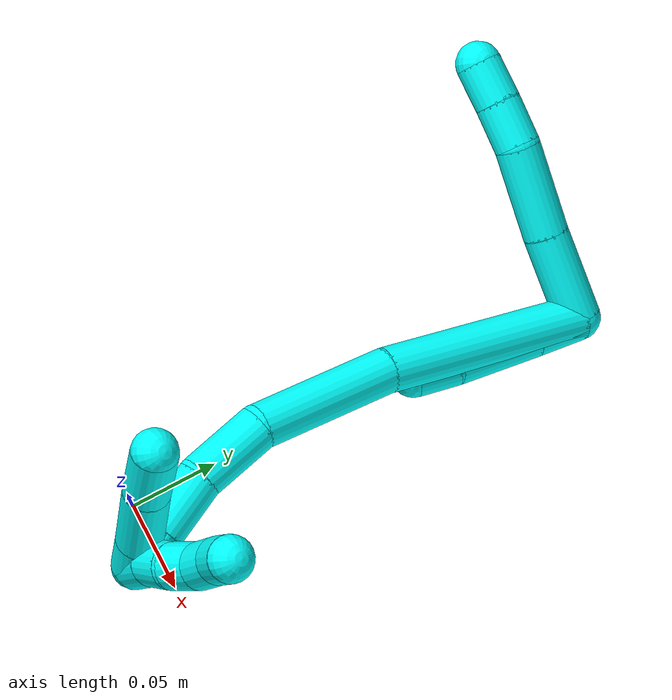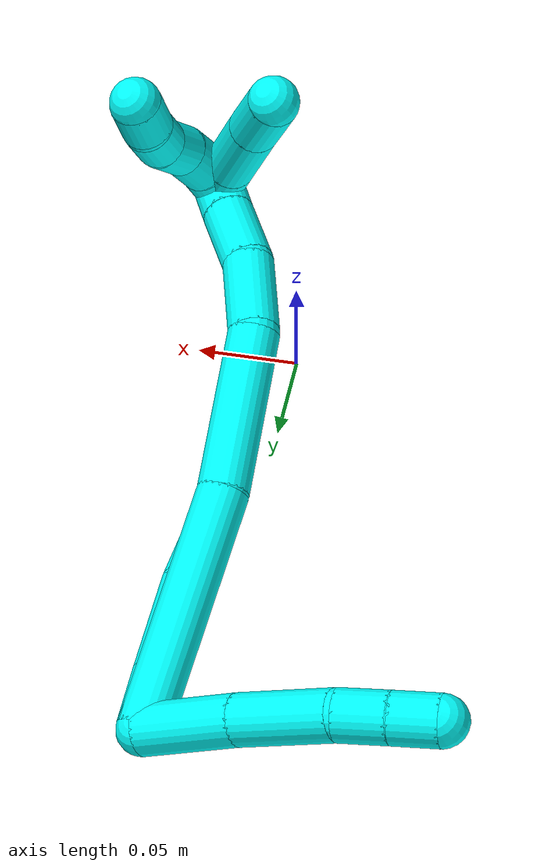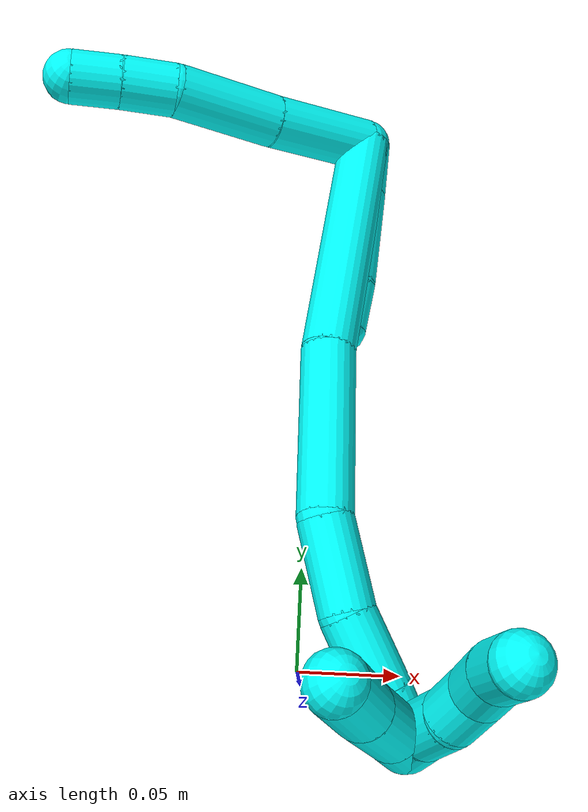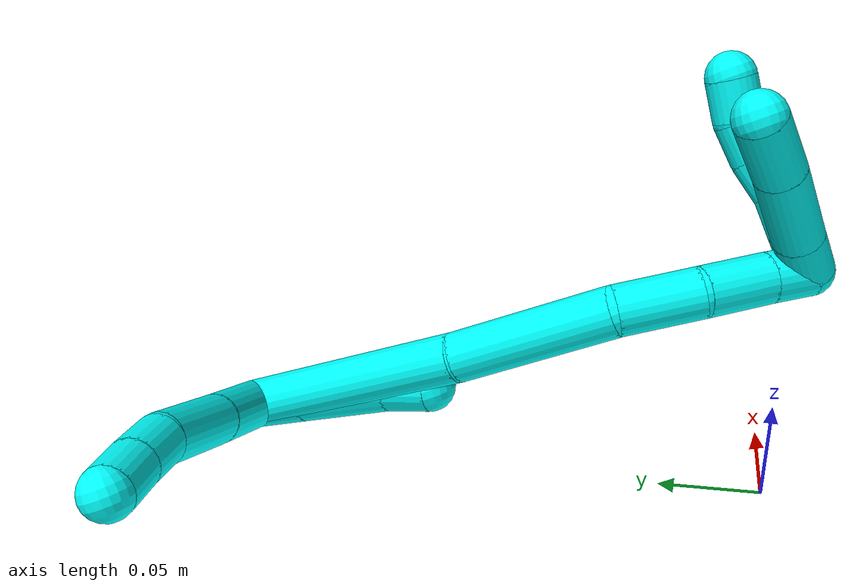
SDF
<sdf version="1.7">
 <world name="default">
  <model name="3">
   <static>0</static>
   <link name="3">
    <collision name="collision-cylinder-e_1_2_8">
     <pose>-0.024982 -0.001357 0.002448 0.506124 -1.45923 -0.454513</pose>
     <geometry><cylinder><radius>0.0125</radius><length>0.050277</length></cylinder></geometry>
     <surface>
      <friction><ode><mu>1.16</mu><mu2>1.16</mu2><slip1>0</slip1><slip2>0</slip2></ode></friction>
      <contact><ode><kp>1e+06</kp><kd>1</kd><max_vel>0</max_vel><min_depth>0.001</min_depth></ode></contact>
     </surface>
    </collision>
    <visual name="visual-cylinder-e_1_2_8">
     <pose>-0.024982 -0.001357 0.002448 0.506124 -1.45923 -0.454513</pose>
     <geometry><cylinder><radius>0.0125</radius><length>0.050277</length></cylinder></geometry>
     <material><ambient>0.003922 1 0.996078 1</ambient></material>
    </visual>
    <collision name="collision-cylinder-e_2_8_9">
     <pose>-0.075294 -0.002728 0.007645 0.005089 -1.46271 -0.004567</pose>
     <geometry><cylinder><radius>0.0125</radius><length>0.050957</length></cylinder></geometry>
     <surface>
      <friction><ode><mu>1.16</mu><mu2>1.16</mu2><slip1>0</slip1><slip2>0</slip2></ode></friction>
      <contact><ode><kp>1e+06</kp><kd>1</kd><max_vel>0</max_vel><min_depth>0.001</min_depth></ode></contact>
     </surface>
    </collision>
    <visual name="visual-cylinder-e_2_8_9">
     <pose>-0.075294 -0.002728 0.007645 0.005089 -1.46271 -0.004567</pose>
     <geometry><cylinder><radius>0.0125</radius><length>0.050957</length></cylinder></geometry>
     <material><ambient>0.003922 1 0.996078 1</ambient></material>
    </visual>
    <collision name="collision-cylinder-e_3_9_10">
     <pose>-0.113175 -0.002554 0.008717 -3.03 -1.43723 3.01404</pose>
     <geometry><cylinder><radius>0.0125</radius><length>0.025328</length></cylinder></geometry>
     <surface>
      <friction><ode><mu>1.16</mu><mu2>1.16</mu2><slip1>0</slip1><slip2>0</slip2></ode></friction>
      <contact><ode><kp>1e+06</kp><kd>1</kd><max_vel>0</max_vel><min_depth>0.001</min_depth></ode></contact>
     </surface>
    </collision>
    <visual name="visual-cylinder-e_3_9_10">
     <pose>-0.113175 -0.002554 0.008717 -3.03 -1.43723 3.01404</pose>
     <geometry><cylinder><radius>0.0125</radius><length>0.025328</length></cylinder></geometry>
     <material><ambient>0.003922 1 0.996078 1</ambient></material>
    </visual>
    <collision name="collision-cylinder-e_4_10_6">
     <pose>-0.137252 -0.002294 0.004922 -3.10768 -1.38885 3.10087</pose>
     <geometry><cylinder><radius>0.0125</radius><length>0.023438</length></cylinder></geometry>
     <surface>
      <friction><ode><mu>1.16</mu><mu2>1.16</mu2><slip1>0</slip1><slip2>0</slip2></ode></friction>
      <contact><ode><kp>1e+06</kp><kd>1</kd><max_vel>0</max_vel><min_depth>0.001</min_depth></ode></contact>
     </surface>
    </collision>
    <visual name="visual-cylinder-e_4_10_6">
     <pose>-0.137252 -0.002294 0.004922 -3.10768 -1.38885 3.10087</pose>
     <geometry><cylinder><radius>0.0125</radius><length>0.023438</length></cylinder></geometry>
     <material><ambient>0.003922 1 0.996078 1</ambient></material>
    </visual>
    <collision name="collision-cylinder-e_1_2_11">
     <pose>-0.001075 -0.013984 -0.002144 1.72295 -0.075829 -0.088328</pose>
     <geometry><cylinder><radius>0.0125</radius><length>0.028377</length></cylinder></geometry>
     <surface>
      <friction><ode><mu>1.16</mu><mu2>1.16</mu2><slip1>0</slip1><slip2>0</slip2></ode></friction>
      <contact><ode><kp>1e+06</kp><kd>1</kd><max_vel>0</max_vel><min_depth>0.001</min_depth></ode></contact>
     </surface>
    </collision>
    <visual name="visual-cylinder-e_1_2_11">
     <pose>-0.001075 -0.013984 -0.002144 1.72295 -0.075829 -0.088328</pose>
     <geometry><cylinder><radius>0.0125</radius><length>0.028377</length></cylinder></geometry>
     <material><ambient>0.003922 1 0.996078 1</ambient></material>
    </visual>
    <collision name="collision-cylinder-e_2_11_12">
     <pose>-0.004395 -0.05165 -0.007922 1.72303 -0.093452 -0.108854</pose>
     <geometry><cylinder><radius>0.0125</radius><length>0.048129</length></cylinder></geometry>
     <surface>
      <friction><ode><mu>1.16</mu><mu2>1.16</mu2><slip1>0</slip1><slip2>0</slip2></ode></friction>
      <contact><ode><kp>1e+06</kp><kd>1</kd><max_vel>0</max_vel><min_depth>0.001</min_depth></ode></contact>
     </surface>
    </collision>
    <visual name="visual-cylinder-e_2_11_12">
     <pose>-0.004395 -0.05165 -0.007922 1.72303 -0.093452 -0.108854</pose>
     <geometry><cylinder><radius>0.0125</radius><length>0.048129</length></cylinder></geometry>
     <material><ambient>0.003922 1 0.996078 1</ambient></material>
    </visual>
    <collision name="collision-cylinder-e_3_12_5">
     <pose>-0.008244 -0.086565 -0.0146 1.8355 -0.136886 -0.178734</pose>
     <geometry><cylinder><radius>0.0125</radius><length>0.023495</length></cylinder></geometry>
     <surface>
      <friction><ode><mu>1.16</mu><mu2>1.16</mu2><slip1>0</slip1><slip2>0</slip2></ode></friction>
      <contact><ode><kp>1e+06</kp><kd>1</kd><max_vel>0</max_vel><min_depth>0.001</min_depth></ode></contact>
     </surface>
    </collision>
    <visual name="visual-cylinder-e_3_12_5">
     <pose>-0.008244 -0.086565 -0.0146 1.8355 -0.136886 -0.178734</pose>
     <geometry><cylinder><radius>0.0125</radius><length>0.023495</length></cylinder></geometry>
     <material><ambient>0.003922 1 0.996078 1</ambient></material>
    </visual>
    <collision name="collision-cylinder-e_1_2_13">
     <pose>-0.010445 -0.059325 -0.003057 1.62228 -0.174054 -0.183204</pose>
     <geometry><cylinder><radius>0.0125</radius><length>0.12063</length></cylinder></geometry>
     <surface>
      <friction><ode><mu>1.16</mu><mu2>1.16</mu2><slip1>0</slip1><slip2>0</slip2></ode></friction>
      <contact><ode><kp>1e+06</kp><kd>1</kd><max_vel>0</max_vel><min_depth>0.001</min_depth></ode></contact>
     </surface>
    </collision>
    <visual name="visual-cylinder-e_1_2_13">
     <pose>-0.010445 -0.059325 -0.003057 1.62228 -0.174054 -0.183204</pose>
     <geometry><cylinder><radius>0.0125</radius><length>0.12063</length></cylinder></geometry>
     <material><ambient>0.003922 1 0.996078 1</ambient></material>
    </visual>
    <collision name="collision-cylinder-e_2_13_14">
     <pose>-0.022743 -0.15939 -0.006873 1.58943 -0.04545 -0.046305</pose>
     <geometry><cylinder><radius>0.0125</radius><length>0.081579</length></cylinder></geometry>
     <surface>
      <friction><ode><mu>1.16</mu><mu2>1.16</mu2><slip1>0</slip1><slip2>0</slip2></ode></friction>
      <contact><ode><kp>1e+06</kp><kd>1</kd><max_vel>0</max_vel><min_depth>0.001</min_depth></ode></contact>
     </surface>
    </collision>
    <visual name="visual-cylinder-e_2_13_14">
     <pose>-0.022743 -0.15939 -0.006873 1.58943 -0.04545 -0.046305</pose>
     <geometry><cylinder><radius>0.0125</radius><length>0.081579</length></cylinder></geometry>
     <material><ambient>0.003922 1 0.996078 1</ambient></material>
    </visual>
    <collision name="collision-cylinder-e_3_14_15">
     <pose>-0.019126 -0.219806 -0.010425 1.71179 0.268638 0.308855</pose>
     <geometry><cylinder><radius>0.0125</radius><length>0.041225</length></cylinder></geometry>
     <surface>
      <friction><ode><mu>1.16</mu><mu2>1.16</mu2><slip1>0</slip1><slip2>0</slip2></ode></friction>
      <contact><ode><kp>1e+06</kp><kd>1</kd><max_vel>0</max_vel><min_depth>0.001</min_depth></ode></contact>
     </surface>
    </collision>
    <visual name="visual-cylinder-e_3_14_15">
     <pose>-0.019126 -0.219806 -0.010425 1.71179 0.268638 0.308855</pose>
     <geometry><cylinder><radius>0.0125</radius><length>0.041225</length></cylinder></geometry>
     <material><ambient>0.003922 1 0.996078 1</ambient></material>
    </visual>
    <collision name="collision-cylinder-e_4_15_16">
     <pose>-0.005149 -0.254272 -0.015946 1.75322 0.514731 0.612502</pose>
     <geometry><cylinder><radius>0.0125</radius><length>0.034556</length></cylinder></geometry>
     <surface>
      <friction><ode><mu>1.16</mu><mu2>1.16</mu2><slip1>0</slip1><slip2>0</slip2></ode></friction>
      <contact><ode><kp>1e+06</kp><kd>1</kd><max_vel>0</max_vel><min_depth>0.001</min_depth></ode></contact>
     </surface>
    </collision>
    <visual name="visual-cylinder-e_4_15_16">
     <pose>-0.005149 -0.254272 -0.015946 1.75322 0.514731 0.612502</pose>
     <geometry><cylinder><radius>0.0125</radius><length>0.034556</length></cylinder></geometry>
     <material><ambient>0.003922 1 0.996078 1</ambient></material>
    </visual>
    <collision name="collision-cylinder-e_5_16_1">
     <pose>0.008538 -0.27857 -0.020643 1.77497 0.490143 0.596079</pose>
     <geometry><cylinder><radius>0.0125</radius><length>0.02201</length></cylinder></geometry>
     <surface>
      <friction><ode><mu>1.16</mu><mu2>1.16</mu2><slip1>0</slip1><slip2>0</slip2></ode></friction>
      <contact><ode><kp>1e+06</kp><kd>1</kd><max_vel>0</max_vel><min_depth>0.001</min_depth></ode></contact>
     </surface>
    </collision>
    <visual name="visual-cylinder-e_5_16_1">
     <pose>0.008538 -0.27857 -0.020643 1.77497 0.490143 0.596079</pose>
     <geometry><cylinder><radius>0.0125</radius><length>0.02201</length></cylinder></geometry>
     <material><ambient>0.003922 1 0.996078 1</ambient></material>
    </visual>
    <collision name="collision-cylinder-e_1_1_17">
     <pose>0.012929 -0.287752 -0.012648 -0.032616 -0.078982 0.001289</pose>
     <geometry><cylinder><radius>0.0125</radius><length>0.02</length></cylinder></geometry>
     <surface>
      <friction><ode><mu>1.16</mu><mu2>1.16</mu2><slip1>0</slip1><slip2>0</slip2></ode></friction>
      <contact><ode><kp>1e+06</kp><kd>1</kd><max_vel>0</max_vel><min_depth>0.001</min_depth></ode></contact>
     </surface>
    </collision>
    <visual name="visual-cylinder-e_1_1_17">
     <pose>0.012929 -0.287752 -0.012648 -0.032616 -0.078982 0.001289</pose>
     <geometry><cylinder><radius>0.0125</radius><length>0.02</length></cylinder></geometry>
     <material><ambient>0.003922 1 0.996078 1</ambient></material>
    </visual>
    <collision name="collision-cylinder-e_2_17_18">
     <pose>0.013137 -0.287105 0.00726 -0.032406 0.099787 -0.001618</pose>
     <geometry><cylinder><radius>0.0125</radius><length>0.02</length></cylinder></geometry>
     <surface>
      <friction><ode><mu>1.16</mu><mu2>1.16</mu2><slip1>0</slip1><slip2>0</slip2></ode></friction>
      <contact><ode><kp>1e+06</kp><kd>1</kd><max_vel>0</max_vel><min_depth>0.001</min_depth></ode></contact>
     </surface>
    </collision>
    <visual name="visual-cylinder-e_2_17_18">
     <pose>0.013137 -0.287105 0.00726 -0.032406 0.099787 -0.001618</pose>
     <geometry><cylinder><radius>0.0125</radius><length>0.02</length></cylinder></geometry>
     <material><ambient>0.003922 1 0.996078 1</ambient></material>
    </visual>
    <collision name="collision-cylinder-e_3_18_19">
     <pose>0.015265 -0.284216 0.026804 -0.261236 0.11345 -0.014919</pose>
     <geometry><cylinder><radius>0.0125</radius><length>0.02</length></cylinder></geometry>
     <surface>
      <friction><ode><mu>1.16</mu><mu2>1.16</mu2><slip1>0</slip1><slip2>0</slip2></ode></friction>
      <contact><ode><kp>1e+06</kp><kd>1</kd><max_vel>0</max_vel><min_depth>0.001</min_depth></ode></contact>
     </surface>
    </collision>
    <visual name="visual-cylinder-e_3_18_19">
     <pose>0.015265 -0.284216 0.026804 -0.261236 0.11345 -0.014919</pose>
     <geometry><cylinder><radius>0.0125</radius><length>0.02</length></cylinder></geometry>
     <material><ambient>0.003922 1 0.996078 1</ambient></material>
    </visual>
    <collision name="collision-cylinder-e_4_19_20">
     <pose>0.01513 -0.280809 0.046286 -0.084892 -0.127011 0.005402</pose>
     <geometry><cylinder><radius>0.0125</radius><length>0.02</length></cylinder></geometry>
     <surface>
      <friction><ode><mu>1.16</mu><mu2>1.16</mu2><slip1>0</slip1><slip2>0</slip2></ode></friction>
      <contact><ode><kp>1e+06</kp><kd>1</kd><max_vel>0</max_vel><min_depth>0.001</min_depth></ode></contact>
     </surface>
    </collision>
    <visual name="visual-cylinder-e_4_19_20">
     <pose>0.01513 -0.280809 0.046286 -0.084892 -0.127011 0.005402</pose>
     <geometry><cylinder><radius>0.0125</radius><length>0.02</length></cylinder></geometry>
     <material><ambient>0.003922 1 0.996078 1</ambient></material>
    </visual>
    <collision name="collision-cylinder-e_5_20_4">
     <pose>0.012678 -0.281384 0.065998 0.143082 -0.118832 -0.008526</pose>
     <geometry><cylinder><radius>0.0125</radius><length>0.02</length></cylinder></geometry>
     <surface>
      <friction><ode><mu>1.16</mu><mu2>1.16</mu2><slip1>0</slip1><slip2>0</slip2></ode></friction>
      <contact><ode><kp>1e+06</kp><kd>1</kd><max_vel>0</max_vel><min_depth>0.001</min_depth></ode></contact>
     </surface>
    </collision>
    <visual name="visual-cylinder-e_5_20_4">
     <pose>0.012678 -0.281384 0.065998 0.143082 -0.118832 -0.008526</pose>
     <geometry><cylinder><radius>0.0125</radius><length>0.02</length></cylinder></geometry>
     <material><ambient>0.003922 1 0.996078 1</ambient></material>
    </visual>
    <collision name="collision-cylinder-e_1_1_21">
     <pose>0.006277 -0.288276 -0.013323 0.021372 -0.675333 -0.007504</pose>
     <geometry><cylinder><radius>0.0125</radius><length>0.023808</length></cylinder></geometry>
     <surface>
      <friction><ode><mu>1.16</mu><mu2>1.16</mu2><slip1>0</slip1><slip2>0</slip2></ode></friction>
      <contact><ode><kp>1e+06</kp><kd>1</kd><max_vel>0</max_vel><min_depth>0.001</min_depth></ode></contact>
     </surface>
    </collision>
    <visual name="visual-cylinder-e_1_1_21">
     <pose>0.006277 -0.288276 -0.013323 0.021372 -0.675333 -0.007504</pose>
     <geometry><cylinder><radius>0.0125</radius><length>0.023808</length></cylinder></geometry>
     <material><ambient>0.003922 1 0.996078 1</ambient></material>
    </visual>
    <collision name="collision-cylinder-e_2_21_22">
     <pose>-0.014786 -0.289156 0.012575 0.04101 -0.686471 -0.014658</pose>
     <geometry><cylinder><radius>0.0125</radius><length>0.042982</length></cylinder></geometry>
     <surface>
      <friction><ode><mu>1.16</mu><mu2>1.16</mu2><slip1>0</slip1><slip2>0</slip2></ode></friction>
      <contact><ode><kp>1e+06</kp><kd>1</kd><max_vel>0</max_vel><min_depth>0.001</min_depth></ode></contact>
     </surface>
    </collision>
    <visual name="visual-cylinder-e_2_21_22">
     <pose>-0.014786 -0.289156 0.012575 0.04101 -0.686471 -0.014658</pose>
     <geometry><cylinder><radius>0.0125</radius><length>0.042982</length></cylinder></geometry>
     <material><ambient>0.003922 1 0.996078 1</ambient></material>
    </visual>
    <collision name="collision-cylinder-e_3_22_3">
     <pose>-0.03892 -0.289579 0.042035 -0.020062 -0.685555 0.00716</pose>
     <geometry><cylinder><radius>0.0125</radius><length>0.03321</length></cylinder></geometry>
     <surface>
      <friction><ode><mu>1.16</mu><mu2>1.16</mu2><slip1>0</slip1><slip2>0</slip2></ode></friction>
      <contact><ode><kp>1e+06</kp><kd>1</kd><max_vel>0</max_vel><min_depth>0.001</min_depth></ode></contact>
     </surface>
    </collision>
    <visual name="visual-cylinder-e_3_22_3">
     <pose>-0.03892 -0.289579 0.042035 -0.020062 -0.685555 0.00716</pose>
     <geometry><cylinder><radius>0.0125</radius><length>0.03321</length></cylinder></geometry>
     <material><ambient>0.003922 1 0.996078 1</ambient></material>
    </visual>
    <collision name="collision-sphere-3">
     <pose>-0.049433 -0.289322 0.054886 0 -0 0</pose>
     <geometry><sphere><radius>0.0125</radius></sphere></geometry>
     <surface>
      <friction><ode><mu>1.16</mu><mu2>1.16</mu2><slip1>0</slip1><slip2>0</slip2></ode></friction>
      <contact><ode><kp>1e+06</kp><kd>1</kd><max_vel>0</max_vel><min_depth>0.001</min_depth></ode></contact>
     </surface>
    </collision>
    <visual name="visual-sphere-3">
     <pose>-0.049433 -0.289322 0.054886 0 -0 0</pose>
     <geometry><sphere><radius>0.0125</radius></sphere></geometry>
     <material><ambient>0.003922 1 0.996078 1</ambient></material>
    </visual>
    <collision name="collision-sphere-22">
     <pose>-0.028407 -0.289837 0.029184 0 -0 0</pose>
     <geometry><sphere><radius>0.0125</radius></sphere></geometry>
     <surface>
      <friction><ode><mu>1.16</mu><mu2>1.16</mu2><slip1>0</slip1><slip2>0</slip2></ode></friction>
      <contact><ode><kp>1e+06</kp><kd>1</kd><max_vel>0</max_vel><min_depth>0.001</min_depth></ode></contact>
     </surface>
    </collision>
    <visual name="visual-sphere-22">
     <pose>-0.028407 -0.289837 0.029184 0 -0 0</pose>
     <geometry><sphere><radius>0.0125</radius></sphere></geometry>
     <material><ambient>0.003922 1 0.996078 1</ambient></material>
    </visual>
    <collision name="collision-sphere-21">
     <pose>-0.001165 -0.288474 -0.004034 0 -0 0</pose>
     <geometry><sphere><radius>0.0125</radius></sphere></geometry>
     <surface>
      <friction><ode><mu>1.16</mu><mu2>1.16</mu2><slip1>0</slip1><slip2>0</slip2></ode></friction>
      <contact><ode><kp>1e+06</kp><kd>1</kd><max_vel>0</max_vel><min_depth>0.001</min_depth></ode></contact>
     </surface>
    </collision>
    <visual name="visual-sphere-21">
     <pose>-0.001165 -0.288474 -0.004034 0 -0 0</pose>
     <geometry><sphere><radius>0.0125</radius></sphere></geometry>
     <material><ambient>0.003922 1 0.996078 1</ambient></material>
    </visual>
    <collision name="collision-sphere-4">
     <pose>0.011493 -0.2828 0.075826 0 -0 0</pose>
     <geometry><sphere><radius>0.0125</radius></sphere></geometry>
     <surface>
      <friction><ode><mu>1.16</mu><mu2>1.16</mu2><slip1>0</slip1><slip2>0</slip2></ode></friction>
      <contact><ode><kp>1e+06</kp><kd>1</kd><max_vel>0</max_vel><min_depth>0.001</min_depth></ode></contact>
     </surface>
    </collision>
    <visual name="visual-sphere-4">
     <pose>0.011493 -0.2828 0.075826 0 -0 0</pose>
     <geometry><sphere><radius>0.0125</radius></sphere></geometry>
     <material><ambient>0.003922 1 0.996078 1</ambient></material>
    </visual>
    <collision name="collision-sphere-20">
     <pose>0.013864 -0.279968 0.05617 0 -0 0</pose>
     <geometry><sphere><radius>0.0125</radius></sphere></geometry>
     <surface>
      <friction><ode><mu>1.16</mu><mu2>1.16</mu2><slip1>0</slip1><slip2>0</slip2></ode></friction>
      <contact><ode><kp>1e+06</kp><kd>1</kd><max_vel>0</max_vel><min_depth>0.001</min_depth></ode></contact>
     </surface>
    </collision>
    <visual name="visual-sphere-20">
     <pose>0.013864 -0.279968 0.05617 0 -0 0</pose>
     <geometry><sphere><radius>0.0125</radius></sphere></geometry>
     <material><ambient>0.003922 1 0.996078 1</ambient></material>
    </visual>
    <collision name="collision-sphere-11">
     <pose>-0.00215 -0.027968 -0.004289 0 -0 0</pose>
     <geometry><sphere><radius>0.0125</radius></sphere></geometry>
     <surface>
      <friction><ode><mu>1.16</mu><mu2>1.16</mu2><slip1>0</slip1><slip2>0</slip2></ode></friction>
      <contact><ode><kp>1e+06</kp><kd>1</kd><max_vel>0</max_vel><min_depth>0.001</min_depth></ode></contact>
     </surface>
    </collision>
    <visual name="visual-sphere-11">
     <pose>-0.00215 -0.027968 -0.004289 0 -0 0</pose>
     <geometry><sphere><radius>0.0125</radius></sphere></geometry>
     <material><ambient>0.003922 1 0.996078 1</ambient></material>
    </visual>
    <collision name="collision-sphere-6">
     <pose>-0.148778 -0.002222 0.002803 0 -0 0</pose>
     <geometry><sphere><radius>0.0125</radius></sphere></geometry>
     <surface>
      <friction><ode><mu>1.16</mu><mu2>1.16</mu2><slip1>0</slip1><slip2>0</slip2></ode></friction>
      <contact><ode><kp>1e+06</kp><kd>1</kd><max_vel>0</max_vel><min_depth>0.001</min_depth></ode></contact>
     </surface>
    </collision>
    <visual name="visual-sphere-6">
     <pose>-0.148778 -0.002222 0.002803 0 -0 0</pose>
     <geometry><sphere><radius>0.0125</radius></sphere></geometry>
     <material><ambient>0.003922 1 0.996078 1</ambient></material>
    </visual>
    <collision name="collision-sphere-10">
     <pose>-0.125726 -0.002366 0.007041 0 -0 0</pose>
     <geometry><sphere><radius>0.0125</radius></sphere></geometry>
     <surface>
      <friction><ode><mu>1.16</mu><mu2>1.16</mu2><slip1>0</slip1><slip2>0</slip2></ode></friction>
      <contact><ode><kp>1e+06</kp><kd>1</kd><max_vel>0</max_vel><min_depth>0.001</min_depth></ode></contact>
     </surface>
    </collision>
    <visual name="visual-sphere-10">
     <pose>-0.125726 -0.002366 0.007041 0 -0 0</pose>
     <geometry><sphere><radius>0.0125</radius></sphere></geometry>
     <material><ambient>0.003922 1 0.996078 1</ambient></material>
    </visual>
    <collision name="collision-sphere-9">
     <pose>-0.100624 -0.002742 0.010393 0 -0 0</pose>
     <geometry><sphere><radius>0.0125</radius></sphere></geometry>
     <surface>
      <friction><ode><mu>1.16</mu><mu2>1.16</mu2><slip1>0</slip1><slip2>0</slip2></ode></friction>
      <contact><ode><kp>1e+06</kp><kd>1</kd><max_vel>0</max_vel><min_depth>0.001</min_depth></ode></contact>
     </surface>
    </collision>
    <visual name="visual-sphere-9">
     <pose>-0.100624 -0.002742 0.010393 0 -0 0</pose>
     <geometry><sphere><radius>0.0125</radius></sphere></geometry>
     <material><ambient>0.003922 1 0.996078 1</ambient></material>
    </visual>
    <collision name="collision-sphere-2">
     <geometry><sphere><radius>0.0125</radius></sphere></geometry>
     <surface>
      <friction><ode><mu>1.16</mu><mu2>1.16</mu2><slip1>0</slip1><slip2>0</slip2></ode></friction>
      <contact><ode><kp>1e+06</kp><kd>1</kd><max_vel>0</max_vel><min_depth>0.001</min_depth></ode></contact>
     </surface>
    </collision>
    <visual name="visual-sphere-2">
     <geometry><sphere><radius>0.0125</radius></sphere></geometry>
     <material><ambient>0.003922 1 0.996078 1</ambient></material>
    </visual>
    <collision name="collision-sphere-19">
     <pose>0.016397 -0.28165 0.036402 0 -0 0</pose>
     <geometry><sphere><radius>0.0125</radius></sphere></geometry>
     <surface>
      <friction><ode><mu>1.16</mu><mu2>1.16</mu2><slip1>0</slip1><slip2>0</slip2></ode></friction>
      <contact><ode><kp>1e+06</kp><kd>1</kd><max_vel>0</max_vel><min_depth>0.001</min_depth></ode></contact>
     </surface>
    </collision>
    <visual name="visual-sphere-19">
     <pose>0.016397 -0.28165 0.036402 0 -0 0</pose>
     <geometry><sphere><radius>0.0125</radius></sphere></geometry>
     <material><ambient>0.003922 1 0.996078 1</ambient></material>
    </visual>
    <collision name="collision-sphere-8">
     <pose>-0.049965 -0.002714 0.004896 0 -0 0</pose>
     <geometry><sphere><radius>0.0125</radius></sphere></geometry>
     <surface>
      <friction><ode><mu>1.16</mu><mu2>1.16</mu2><slip1>0</slip1><slip2>0</slip2></ode></friction>
      <contact><ode><kp>1e+06</kp><kd>1</kd><max_vel>0</max_vel><min_depth>0.001</min_depth></ode></contact>
     </surface>
    </collision>
    <visual name="visual-sphere-8">
     <pose>-0.049965 -0.002714 0.004896 0 -0 0</pose>
     <geometry><sphere><radius>0.0125</radius></sphere></geometry>
     <material><ambient>0.003922 1 0.996078 1</ambient></material>
    </visual>
    <collision name="collision-sphere-12">
     <pose>-0.006641 -0.075333 -0.011555 0 -0 0</pose>
     <geometry><sphere><radius>0.0125</radius></sphere></geometry>
     <surface>
      <friction><ode><mu>1.16</mu><mu2>1.16</mu2><slip1>0</slip1><slip2>0</slip2></ode></friction>
      <contact><ode><kp>1e+06</kp><kd>1</kd><max_vel>0</max_vel><min_depth>0.001</min_depth></ode></contact>
     </surface>
    </collision>
    <visual name="visual-sphere-12">
     <pose>-0.006641 -0.075333 -0.011555 0 -0 0</pose>
     <geometry><sphere><radius>0.0125</radius></sphere></geometry>
     <material><ambient>0.003922 1 0.996078 1</ambient></material>
    </visual>
    <collision name="collision-sphere-5">
     <pose>-0.009847 -0.097797 -0.017645 0 -0 0</pose>
     <geometry><sphere><radius>0.0125</radius></sphere></geometry>
     <surface>
      <friction><ode><mu>1.16</mu><mu2>1.16</mu2><slip1>0</slip1><slip2>0</slip2></ode></friction>
      <contact><ode><kp>1e+06</kp><kd>1</kd><max_vel>0</max_vel><min_depth>0.001</min_depth></ode></contact>
     </surface>
    </collision>
    <visual name="visual-sphere-5">
     <pose>-0.009847 -0.097797 -0.017645 0 -0 0</pose>
     <geometry><sphere><radius>0.0125</radius></sphere></geometry>
     <material><ambient>0.003922 1 0.996078 1</ambient></material>
    </visual>
    <collision name="collision-sphere-13">
     <pose>-0.02089 -0.11865 -0.006114 0 -0 0</pose>
     <geometry><sphere><radius>0.0125</radius></sphere></geometry>
     <surface>
      <friction><ode><mu>1.16</mu><mu2>1.16</mu2><slip1>0</slip1><slip2>0</slip2></ode></friction>
      <contact><ode><kp>1e+06</kp><kd>1</kd><max_vel>0</max_vel><min_depth>0.001</min_depth></ode></contact>
     </surface>
    </collision>
    <visual name="visual-sphere-13">
     <pose>-0.02089 -0.11865 -0.006114 0 -0 0</pose>
     <geometry><sphere><radius>0.0125</radius></sphere></geometry>
     <material><ambient>0.003922 1 0.996078 1</ambient></material>
    </visual>
    <collision name="collision-sphere-14">
     <pose>-0.024597 -0.20013 -0.007632 0 -0 0</pose>
     <geometry><sphere><radius>0.0125</radius></sphere></geometry>
     <surface>
      <friction><ode><mu>1.16</mu><mu2>1.16</mu2><slip1>0</slip1><slip2>0</slip2></ode></friction>
      <contact><ode><kp>1e+06</kp><kd>1</kd><max_vel>0</max_vel><min_depth>0.001</min_depth></ode></contact>
     </surface>
    </collision>
    <visual name="visual-sphere-14">
     <pose>-0.024597 -0.20013 -0.007632 0 -0 0</pose>
     <geometry><sphere><radius>0.0125</radius></sphere></geometry>
     <material><ambient>0.003922 1 0.996078 1</ambient></material>
    </visual>
    <collision name="collision-sphere-15">
     <pose>-0.013655 -0.239482 -0.013218 0 -0 0</pose>
     <geometry><sphere><radius>0.0125</radius></sphere></geometry>
     <surface>
      <friction><ode><mu>1.16</mu><mu2>1.16</mu2><slip1>0</slip1><slip2>0</slip2></ode></friction>
      <contact><ode><kp>1e+06</kp><kd>1</kd><max_vel>0</max_vel><min_depth>0.001</min_depth></ode></contact>
     </surface>
    </collision>
    <visual name="visual-sphere-15">
     <pose>-0.013655 -0.239482 -0.013218 0 -0 0</pose>
     <geometry><sphere><radius>0.0125</radius></sphere></geometry>
     <material><ambient>0.003922 1 0.996078 1</ambient></material>
    </visual>
    <collision name="collision-sphere-16">
     <pose>0.003357 -0.269062 -0.018675 0 -0 0</pose>
     <geometry><sphere><radius>0.0125</radius></sphere></geometry>
     <surface>
      <friction><ode><mu>1.16</mu><mu2>1.16</mu2><slip1>0</slip1><slip2>0</slip2></ode></friction>
      <contact><ode><kp>1e+06</kp><kd>1</kd><max_vel>0</max_vel><min_depth>0.001</min_depth></ode></contact>
     </surface>
    </collision>
    <visual name="visual-sphere-16">
     <pose>0.003357 -0.269062 -0.018675 0 -0 0</pose>
     <geometry><sphere><radius>0.0125</radius></sphere></geometry>
     <material><ambient>0.003922 1 0.996078 1</ambient></material>
    </visual>
    <collision name="collision-sphere-1">
     <pose>0.013718 -0.288077 -0.022612 0 -0 0</pose>
     <geometry><sphere><radius>0.0125</radius></sphere></geometry>
     <surface>
      <friction><ode><mu>1.16</mu><mu2>1.16</mu2><slip1>0</slip1><slip2>0</slip2></ode></friction>
      <contact><ode><kp>1e+06</kp><kd>1</kd><max_vel>0</max_vel><min_depth>0.001</min_depth></ode></contact>
     </surface>
    </collision>
    <visual name="visual-sphere-1">
     <pose>0.013718 -0.288077 -0.022612 0 -0 0</pose>
     <geometry><sphere><radius>0.0125</radius></sphere></geometry>
     <material><ambient>0.003922 1 0.996078 1</ambient></material>
    </visual>
    <collision name="collision-sphere-18">
     <pose>0.014133 -0.286782 0.017205 0 -0 0</pose>
     <geometry><sphere><radius>0.0125</radius></sphere></geometry>
     <surface>
      <friction><ode><mu>1.16</mu><mu2>1.16</mu2><slip1>0</slip1><slip2>0</slip2></ode></friction>
      <contact><ode><kp>1e+06</kp><kd>1</kd><max_vel>0</max_vel><min_depth>0.001</min_depth></ode></contact>
     </surface>
    </collision>
    <visual name="visual-sphere-18">
     <pose>0.014133 -0.286782 0.017205 0 -0 0</pose>
     <geometry><sphere><radius>0.0125</radius></sphere></geometry>
     <material><ambient>0.003922 1 0.996078 1</ambient></material>
    </visual>
    <collision name="collision-sphere-17">
     <pose>0.01214 -0.287427 -0.002685 0 -0 0</pose>
     <geometry><sphere><radius>0.0125</radius></sphere></geometry>
     <surface>
      <friction><ode><mu>1.16</mu><mu2>1.16</mu2><slip1>0</slip1><slip2>0</slip2></ode></friction>
      <contact><ode><kp>1e+06</kp><kd>1</kd><max_vel>0</max_vel><min_depth>0.001</min_depth></ode></contact>
     </surface>
    </collision>
    <visual name="visual-sphere-17">
     <pose>0.01214 -0.287427 -0.002685 0 -0 0</pose>
     <geometry><sphere><radius>0.0125</radius></sphere></geometry>
     <material><ambient>0.003922 1 0.996078 1</ambient></material>
    </visual>
    <inertial>
     <pose>-0.021202 -0.142287 0.002656 0 -0 0</pose>
     <mass>0.75</mass>
     <inertia><ixx>0.0002</ixx><ixy>0</ixy><ixz>0</ixz><iyy>-1e-05</iyy><iyz>0</iyz><izz>0.000301</izz></inertia>
    </inertial>
   </link>
   <pose>0.021968 0.260494 0.012505 -0.426942 0.32154 -0.088419</pose>
  </model>
 </world>
</sdf>
